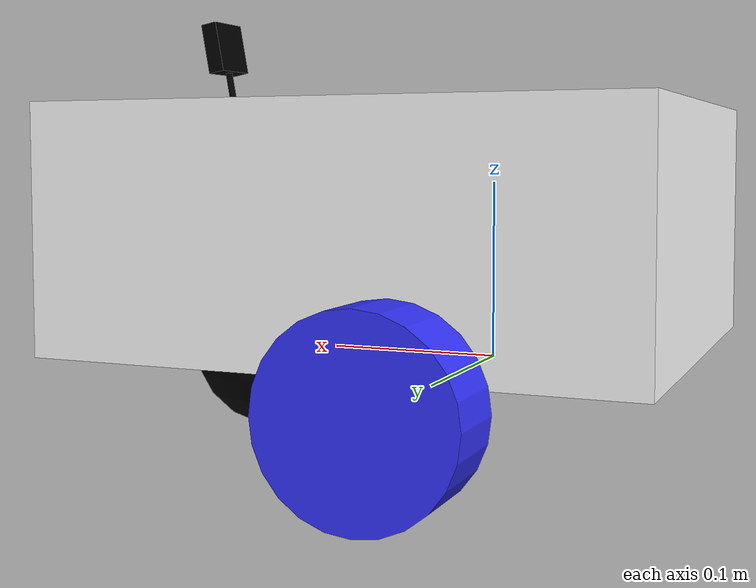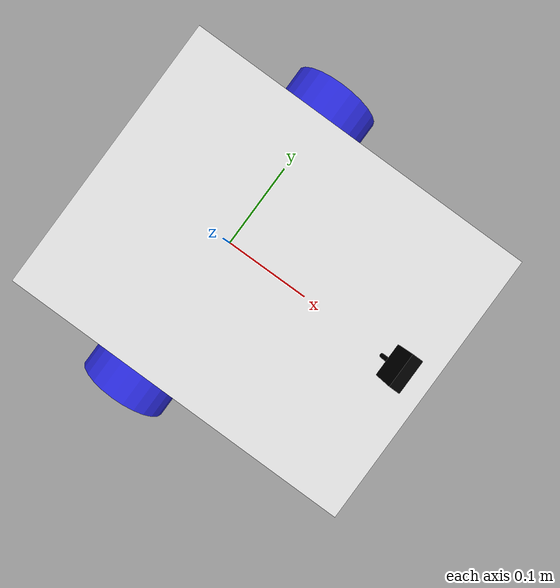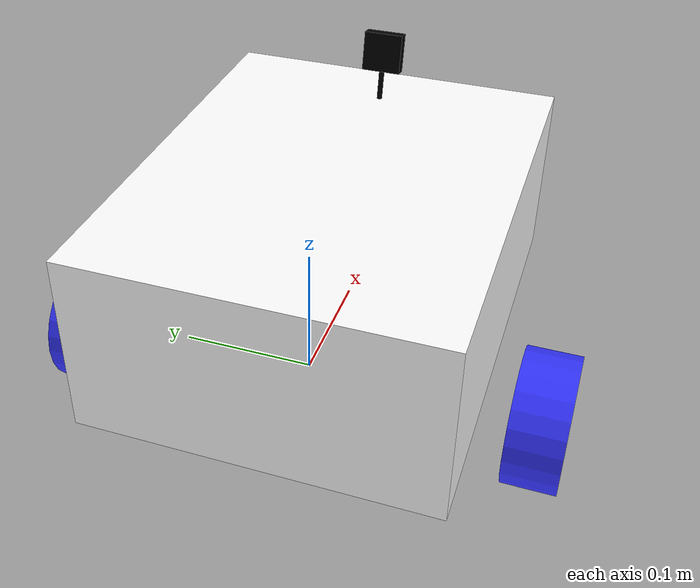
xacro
<?xml version="1.0"?>
<robot xmlns:xacro="http://www.ros.org/wiki/xacro"  name="robot">

    <xacro:include filename="robot_core.xacro" />

    <xacro:include filename="camera.xacro" />

</robot>

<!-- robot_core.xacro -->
<robot xmlns:xacro="http://www.ros.org/wiki/xacro" >

  <xacro:include filename="inertial_macros.xacro"/>

  <!-- DEFINING COLORS -->

  <material name="white">
    <color rgba="1 1 1 1"/>
  </material>
  <material name="orange">
    <color rgba="1 .3 .1 1"/>
  </material>
  <material name="blue">
    <color rgba=".2 .2 1 1"/>
  </material>
  <material name="black">
    <color rgba="0 0 0 1"/>
  </material>

  <xacro:property name="chassis_length" value="0.335"/>
    <xacro:property name="chassis_width" value="0.265"/>
    <xacro:property name="chassis_height" value="0.138"/>
    <xacro:property name="chassis_mass" value="1.0"/>
    <xacro:property name="wheel_radius" value="0.033"/>
    <xacro:property name="wheel_thickness" value="0.026"/>
    <xacro:property name="wheel_mass" value="0.05"/>
    <xacro:property name="wheel_offset_x" value="0.226"/>
    <xacro:property name="wheel_offset_y" value="0.1485"/>
    <xacro:property name="wheel_offset_z" value="0.01"/>
    <xacro:property name="caster_wheel_radius" value="0.01"/>
    <xacro:property name="caster_wheel_mass" value="0.01"/>
    <xacro:property name="caster_wheel_offset_x" value="0.075"/>
    <xacro:property name="caster_wheel_offset_z" value="${wheel_offset_z - wheel_radius + caster_wheel_radius}"/>

  <!-- BASE LINK (common notation): Center of two drive wheels -->

  <link name="base_link"/>

  <!-- Chassis LINK -->

  <joint name="chassis_joint" type="fixed">
    <parent link="base_link"/>
    <child link="chassis"/>
    <origin xyz="-0.1 0 0"/>
  </joint>

  <link name="chassis">
    <visual>
      <origin xyz="0.15 0 0.075"/>
      <geometry>
        <box size="${chassis_length} ${chassis_width} ${chassis_height}"/>
      </geometry>
      <material name="white"/>
    </visual>
    <collision>
      <origin xyz="0.15 0 0.075"/>
      <geometry>
        <box size="${chassis_length} ${chassis_width} ${chassis_height}"/>
      </geometry>
    </collision>
    <xacro:inertial_box mass="0.5" x="${chassis_length}" y="${chassis_width}" z="${chassis_height}">
            <origin xyz="${chassis_length/2} 0 ${chassis_height/2}" rpy="0 0 0"/>
        </xacro:inertial_box>
  </link>

  <gazebo reference="chassis">
    <material>Gazebo/White</material>
  </gazebo>

  <!-- LEFT WHEEL LINK -->

  <joint name="left_wheel_joint" type="continuous">
    <parent link="base_link"/>
    <child link="left_wheel"/>
    <origin xyz="0 0.175 0" rpy="-${pi/2} 0 0" />
    <axis xyz="0 0 1" />
  </joint>

  <link name="left_wheel">
    <visual>
      <geometry>
        <cylinder radius="0.05" length="0.04"/>
      </geometry>
      <material name="blue"/>
    </visual>
    <collision>
      <geometry>
        <cylinder radius="0.05" length="0.04"/>
      </geometry>
    </collision>
    <xacro:inertial_cylinder mass="${wheel_mass}" length="${wheel_thickness}" radius="${wheel_radius}">
            <origin xyz="0 0 0" rpy="0 0 0"/>
    </xacro:inertial_cylinder>
  </link>

   <gazebo reference="left_wheel">
    <material>Gazebo/Blue</material>
  </gazebo>

  <!-- RIGHT WHEEL -->

  <joint name="right_wheel_joint" type="continuous">
    <parent link="base_link"/>
    <child link="right_wheel"/>
    <origin xyz="0 -0.175 0" rpy="${pi/2} 0 0"/>
    <axis xyz="0 0 -1"/>
  </joint>

  <link name="right_wheel">
    <visual>
      <geometry>
        <cylinder radius="0.05" length="0.04"/>
      </geometry>
      <material name="blue"/>
    </visual>
    <collision>
      <geometry>
        <cylinder radius="0.05" length="0.04"/>
      </geometry>
    </collision>
    <xacro:inertial_cylinder mass="${wheel_mass}" length="${wheel_thickness}" radius="${wheel_radius}">
            <origin xyz="0 0 0" rpy="0 0 0"/>
    </xacro:inertial_cylinder>
  </link>

   <gazebo reference="right_wheel">
    <material>Gazebo/Blue</material>
  </gazebo>

  <!-- CASTER WHEEL LINK -->

  <joint name="caster_wheel_joint" type="fixed">
    <parent link="chassis"/>
    <child link="caster_wheel"/>
    <origin xyz="0.24 0 0" rpy="0 0 0"/>
  </joint>

  <link name="caster_wheel">
    <visual>
        <geometry>
            <sphere radius="0.05"/>
        </geometry>
        <material name="black"/>
    </visual>
    <collision>
        <geometry>
            <sphere radius="0.05"/>
        </geometry>
    </collision>
    <xacro:inertial_sphere mass="${caster_wheel_mass}" radius="${caster_wheel_radius}">
            <origin xyz="0 0 0" rpy="0 0 0"/>
        </xacro:inertial_sphere>
  </link>

  <gazebo reference="caster_wheel">
    <material>Gazebo/Black</material>
  </gazebo>

</robot>

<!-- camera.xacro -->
<robot xmlns:xacro="http://www.ros.org/wiki/xacro" >

    <joint name="camera_joint" type="fixed">
        <parent link="chassis"/>
        <child link="camera_link"/>
        <origin xyz="0.276 0 0.181" rpy="0 0.18 0"/>
    </joint>

    <link name="camera_link">
        <visual>
            <geometry>
                <box size="0.010 0.03 0.03"/>
            </geometry>
            <material name="black"/>
        </visual>
        <visual>
            <origin xyz="0 0 -0.05"/>
            <geometry>
                <cylinder radius="0.002" length="0.1"/>
            </geometry>
            <material name="black"/>
        </visual>
    </link>

    <joint name="camera_optical_joint" type="fixed">
        <parent link="camera_link"/>
        <child link="camera_link_optical"/>
        <origin xyz="0 0 0" rpy="${-pi/2} 0 ${-pi/2}"/>
    </joint>

    <link name="camera_link_optical"></link>

    <gazebo reference="camera_link">
        <material>Gazebo/Black</material>

        <sensor name="camera" type="camera">
            <pose> 0 0 0 0 0 0 </pose>
            <visualize>true</visualize>
            <update_rate>10</update_rate>
            <camera>
                <horizontal_fov>1.089</horizontal_fov>
                <image>
                    <format>R8G8B8</format>
                    <width>640</width>
                    <height>480</height>
                </image>
                <clip>
                    <near>0.05</near>
                    <far>8.0</far>
                </clip>
            </camera>
        </sensor>
    </gazebo>

</robot>
